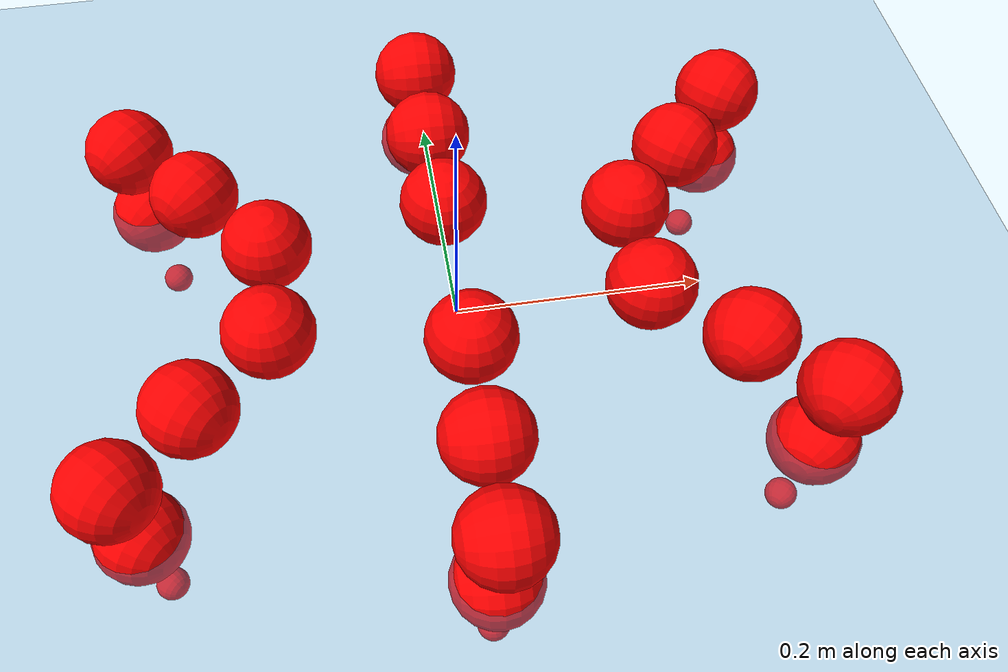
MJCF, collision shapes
<mujoco model="Golem">
  <compiler angle="radian" assetdir="assets" balanceinertia="true" inertiafromgeom="false"/>

  <option timestep="0.005" density="1.2" viscosity="2e-05"/>

  <size nkey="1"/>

  <visual>
    <quality shadowsize="8192"/>
    <map shadowclip="0.5"/>
  </visual>

  <default>
    <default class="/">
      <joint armature="0.01" damping="0.01" frictionloss="0.01"/>
      <geom contype="0" conaffinity="0" group="1" solref="-1000 -80"/>
      <site size="0.01 0.005 0.005" group="5"/>
      <general forcelimited="true" biastype="affine" gainprm="25" biasprm="0 -25 -0.5"/>
      <default class="visual">
        <geom type="mesh" group="2"/>
      </default>
      <default class="collision">
        <geom group="3"/>
      </default>
      <default class="foot">
        <geom size="0.01 0 0" condim="6" group="4" priority="1" solimp="0.015 1 0.01"/>
      </default>
      <default class="reward_collision_sphere">
        <geom group="5" rgba="1 0 0 1"/>
      </default>
    </default>
  </default>

  <asset>
    <texture type="skybox" colorspace="auto" name="//unnamed_texture_0" builtin="gradient" rgb1="0.95 0.95 0.95" rgb2="0.95 0.95 0.95" width="100" height="600"/>
    <texture type="2d" colorspace="auto" name="texplane" builtin="checker" rgb1="0.345 0.575 0.748" rgb2="0.345 0.575 0.748" markrgb="1 1 1" width="512" height="512"/>
    <material name="MatPlane" class="/" texture="texplane" texuniform="true" texrepeat="2 2" specular="0.9"/>
    <mesh name="body" class="/" file="body.stl" scale="0.001 0.001 0.001"/>
    <mesh name="coxa" class="/" file="coxa.stl" scale="0.001 0.001 0.001"/>
    <mesh name="femur" class="/" file="femur.stl" scale="0.001 0.001 0.001"/>
    <mesh name="tibia" class="/" file="tibia.stl" scale="0.001 0.001 0.001"/>
    <mesh name="tarsus" class="/" file="tarsus.stl" scale="0.001 0.001 0.001"/>
  </asset>

  <worldbody>
    <geom name="floor" class="/" size="100 100 0.125" type="plane" group="0" material="MatPlane"/>
    <light name="toplight_shadow" class="/" pos="0 0 5" dir="0.0990148 0.0990148 -0.990148" type="directional" ambient="0.04 0.04 0.04" diffuse="0.55 0.55 0.55" specular="0.12 0.12 0.12"/>
    <light name="toplight_fill" class="/" pos="0 0 5" dir="0.0990148 0.0990148 -0.990148" type="directional" castshadow="false" ambient="0.04 0.04 0.04" diffuse="0.3 0.3 0.3" specular="0.08 0.08 0.08"/>
    <body name="trunk" pos="-0.000109662 -0.000117829 -0.00176784" quat="1 -0.000251081 -7.6792e-06 0.000287579">
      <inertial pos="-0.000132042 0.000471662 -0.0048386" quat="0.999989 -0.00113466 -0.00278938 0.00360261" mass="2.4746" diaginertia="0.00605927 0.00165227 0.0104068"/>
      <joint name="//unnamed_joint_0" type="free"/>
      <geom name="//unnamed_geom_1" class="/" pos="0 0 0.0644126" quat="1 0 0 0" type="mesh" rgba="0.9 0.9 0.9 1" mesh="body"/>
      <site name="imu" class="/" pos="0.121396 7.11472e-05 0.106837" size="0.00867408"/>
      <camera name="track" class="/" pos="0 -1.38901 0" quat="0.707107 0.707107 0 0" mode="trackcom"/>
      <camera name="ego_camera" class="/" pos="0.117165 0 0.100645" quat="-0.5 -0.5 0.5 0.5"/>
      <body name="coxa_RR" pos="-0.161758 -0.0590945 0.0658676" quat="0.381831 0.00061659 0.000209761 -0.924232">
        <inertial pos="-0.0021237 0.000137956 0.00116028" quat="0.999979 -0.00346579 -0.00364748 0.00419896" mass="0.129118" diaginertia="0.0059768 0.00162763 0.0100606"/>
        <joint name="coxa_joint_RR" class="/" pos="0 0 0" axis="-1.09223e-05 -1.25131e-06 -1" range="-3.12337 3.13597" armature="0.00904241" damping="0.00977533" frictionloss="0.00925029"/>
        <geom name="//unnamed_geom_2" class="/" type="mesh" rgba="0.2 0.2 0.2 1" mesh="coxa"/>
        <geom name="//unnamed_geom_3" class="reward_collision_sphere" size="0.0346963" pos="-0.0270382 0 0"/>
        <body name="femur_RR" pos="0.0525901 -0.000530766 0.000657563" quat="0.499834 -0.500055 0.500039 0.500072">
          <inertial pos="-0.000640874 0.000730154 0.00166749" quat="1 -4.42413e-05 -0.000162007 -0.000432336" mass="0.1312" diaginertia="0.00597468 0.00162114 0.0101138"/>
          <joint name="femur_joint_RR" class="/" pos="0 0 0" axis="-0.00482646 0.00228223 -0.999986" stiffness="0.00148968" range="-3.15754 3.14321" armature="0.00896897" damping="0.00472751" frictionloss="0.00909385"/>
          <geom name="//unnamed_geom_4" class="/" type="mesh" rgba="0.9 0.9 0.9 1" mesh="femur"/>
          <geom name="//unnamed_geom_5" class="reward_collision_sphere" size="0.0346963"/>
          <body name="tibia_RR" pos="-0.000421366 -0.0749282 0.000830242" quat="-1.55671e-05 1 -2.31162e-05 -3.14612e-07">
            <inertial pos="0.000743036 0.00163611 -0.00175734" quat="0.999976 0.00369283 0.00486487 -0.00339534" mass="0.13071" diaginertia="0.00590627 0.0016263 0.0103815"/>
            <joint name="tibia_joint_RR" class="/" pos="0 0 0" axis="0.00101047 -0.000622486 0.999999" range="-3.14001 3.12988" armature="0.00871469" damping="0" frictionloss="0.00882323"/>
            <geom name="//unnamed_geom_6" class="/" type="mesh" rgba="0.2 0.2 0.2 1" mesh="tibia"/>
            <geom name="//unnamed_geom_7" class="reward_collision_sphere" size="0.0346963"/>
            <body name="tarsus_RR" pos="0.0775454 -0.00179685 -0.0014617" quat="1 -0.000308277 0.000567208 0.000534803">
              <inertial pos="0.052246 -0.00157096 -0.000858118" quat="0.498557 0.500082 0.500972 0.500387" mass="0.127229" diaginertia="0.00596906 0.00163028 0.0102829"/>
              <joint name="tarsus_joint_RR" class="/" pos="0 0 0" axis="-0.000488367 0.00101876 0.999999" range="-3.14101 3.12792" armature="0.00863414" damping="0" frictionloss="0.00865802"/>
              <geom name="//unnamed_geom_8" class="/" type="mesh" rgba="0.9 0.9 0.9 1" mesh="tarsus"/>
              <geom name="foot_1" class="foot" size="0.00850215" pos="0.100943 0 0" quat="0 -0.707107 0 0.707107"/>
              <geom name="//unnamed_geom_10" class="reward_collision_sphere" size="0.0346963"/>
              <geom name="//unnamed_geom_11" class="reward_collision_sphere" size="0.0130111" pos="0.0968868 0 0"/>
              <site name="foot_1" class="foot" pos="0.100943 0 0" quat="0 -0.707107 0 0.707107" size="0.00867408"/>
            </body>
          </body>
        </body>
      </body>
      <body name="coxa_RM" pos="0.00116636 -0.0927252 0.0646632" quat="0.70724 -0.000107712 0.000283793 -0.706973">
        <inertial pos="0.000279591 0.00020389 -0.00191581" quat="0.999989 0.00120966 0.0038863 0.00211396" mass="0.129954" diaginertia="0.00585028 0.00157484 0.0101212"/>
        <joint name="coxa_joint_RM" class="/" pos="0 0 0" axis="-0.000481429 0.000515348 -1" range="-3.14197 3.13602" armature="0.00897158" damping="0.0116167" frictionloss="0.00864744"/>
        <geom name="//unnamed_geom_12" class="/" type="mesh" rgba="0.2 0.2 0.2 1" mesh="coxa"/>
        <geom name="//unnamed_geom_13" class="reward_collision_sphere" size="0.0346963" pos="-0.0270382 0 0"/>
        <body name="femur_RM" pos="0.0526948 -0.00206983 -0.00126971" quat="0.500274 -0.500123 0.499113 0.500489">
          <inertial pos="0.00040314 -0.000208918 -6.02436e-05" quat="0.999955 -0.00480982 -0.00139723 -0.00808998" mass="0.129308" diaginertia="0.00606912 0.00163573 0.0103096"/>
          <joint name="femur_joint_RM" class="/" pos="0 0 0" axis="0.00449937 -0.00223386 -0.999987" range="-3.16281 3.16277" armature="0.00955259" damping="0.0190252" frictionloss="0.00857282"/>
          <geom name="//unnamed_geom_14" class="/" type="mesh" rgba="0.9 0.9 0.9 1" mesh="femur"/>
          <geom name="//unnamed_geom_15" class="reward_collision_sphere" size="0.0346963"/>
          <body name="tibia_RM" pos="-0.00188902 -0.0733692 -0.000804654" quat="9.79542e-06 1 -4.50201e-05 3.19423e-05">
            <inertial pos="0.00104186 0.000208834 -0.00147101" quat="0.999987 0.00192345 -0.00462426 0.00121029" mass="0.126011" diaginertia="0.00578581 0.00159153 0.0103785"/>
            <joint name="tibia_joint_RM" class="/" pos="0 0 0" axis="0.00217919 0.00155457 0.999996" range="-3.16039 3.11506" armature="0.00821229" damping="0" frictionloss="0.00911199"/>
            <geom name="//unnamed_geom_16" class="/" type="mesh" rgba="0.2 0.2 0.2 1" mesh="tibia"/>
            <geom name="//unnamed_geom_17" class="reward_collision_sphere" size="0.0346963"/>
            <body name="tarsus_RM" pos="0.0795592 -0.000972194 0.00269197" quat="1 -0.000356612 5.00374e-06 0.000225022">
              <inertial pos="0.0550758 5.77161e-05 0.00119909" quat="0.499628 0.498092 0.502183 0.500088" mass="0.130273" diaginertia="0.00596886 0.0016134 0.0103766"/>
              <joint name="tarsus_joint_RM" class="/" pos="0 0 0" axis="0.000153285 -0.000325823 1" range="-3.12892 3.18477" armature="0.00871693" damping="0" frictionloss="0.00876596"/>
              <geom name="//unnamed_geom_18" class="/" type="mesh" rgba="0.9 0.9 0.9 1" mesh="tarsus"/>
              <geom name="foot_2" class="foot" size="0.00820996" pos="0.100943 0 0" quat="0 -0.707107 0 0.707107"/>
              <geom name="//unnamed_geom_20" class="reward_collision_sphere" size="0.0346963"/>
              <geom name="//unnamed_geom_21" class="reward_collision_sphere" size="0.0130111" pos="0.0968868 0 0"/>
              <site name="foot_2" class="foot" pos="0.100943 0 0" quat="0 -0.707107 0 0.707107" size="0.00867408"/>
            </body>
          </body>
        </body>
      </body>
      <body name="coxa_RF" pos="0.160454 -0.0581602 0.0640111" quat="0.924053 0.000400541 -0.00066771 -0.382264">
        <inertial pos="0.00178135 -0.00145495 0.000532131" quat="0.999996 0.00214099 0.0016595 9.86846e-05" mass="0.130429" diaginertia="0.00605226 0.00160644 0.0103934"/>
        <joint name="coxa_joint_RF" class="/" pos="0 0 0" axis="-0.00326501 0.00107695 -0.999994" stiffness="0.000594592" range="-3.14141 3.13863" armature="0.00877854" damping="0" frictionloss="0.00910073"/>
        <geom name="//unnamed_geom_22" class="/" type="mesh" rgba="0.2 0.2 0.2 1" mesh="coxa"/>
        <geom name="//unnamed_geom_23" class="reward_collision_sphere" size="0.0346963" pos="-0.0270382 0 0"/>
        <body name="femur_RF" pos="0.0538119 0.00209715 0.0016076" quat="0.500193 -0.500761 0.499998 0.499047">
          <inertial pos="0.000395859 -0.000654073 0.000982167" quat="0.999998 0.00163971 -0.00044089 0.000403433" mass="0.131731" diaginertia="0.00600485 0.00163959 0.0103685"/>
          <joint name="femur_joint_RF" class="/" pos="0 0 0" axis="0.000582767 -0.00479379 -0.999988" range="-3.15297 3.12929" armature="0.00855803" damping="0.0119964" frictionloss="0.0086433"/>
          <geom name="//unnamed_geom_24" class="/" type="mesh" rgba="0.9 0.9 0.9 1" mesh="femur"/>
          <geom name="//unnamed_geom_25" class="reward_collision_sphere" size="0.0346963"/>
          <body name="tibia_RF" pos="0.000517619 -0.0746012 0.000468051" quat="1.82969e-05 1 -0.000131403 -0.000163641">
            <inertial pos="-0.000780693 -0.000769909 -0.000241254" quat="0.999989 0.000617756 0.000759425 -0.00458919" mass="0.125486" diaginertia="0.00577255 0.00156722 0.0102535"/>
            <joint name="tibia_joint_RF" class="/" pos="0 0 0" axis="-0.00189573 0.00038277 0.999998" range="-3.12959 3.11465" armature="0.00867859" damping="0" frictionloss="0.00864161"/>
            <geom name="//unnamed_geom_26" class="/" type="mesh" rgba="0.2 0.2 0.2 1" mesh="tibia"/>
            <geom name="//unnamed_geom_27" class="reward_collision_sphere" size="0.0346963"/>
            <body name="tarsus_RF" pos="0.0784129 -0.00209476 0.00100012" quat="1 1.22664e-05 3.98772e-05 -0.000108936">
              <inertial pos="0.0536281 0.000564672 -0.000661914" quat="0.50034 0.499677 0.499731 0.500251" mass="0.131614" diaginertia="0.00590855 0.00165696 0.0104039"/>
              <joint name="tarsus_joint_RF" class="/" pos="0 0 0" axis="0.000103819 0.000761214 1" range="-3.13639 3.14758" armature="0.00851724" damping="0" frictionloss="0.00856469"/>
              <geom name="//unnamed_geom_28" class="/" type="mesh" rgba="0.9 0.9 0.9 1" mesh="tarsus"/>
              <geom name="foot_3" class="foot" size="0.00862088" pos="0.100943 0 0" quat="0 -0.707107 0 0.707107"/>
              <geom name="//unnamed_geom_30" class="reward_collision_sphere" size="0.0346963"/>
              <geom name="//unnamed_geom_31" class="reward_collision_sphere" size="0.0130111" pos="0.0968868 0 0"/>
              <site name="foot_3" class="foot" pos="0.100943 0 0" quat="0 -0.707107 0 0.707107" size="0.00867408"/>
            </body>
          </body>
        </body>
      </body>
      <body name="coxa_LR" pos="-0.15961 0.0606388 0.0636104" quat="0.382766 0.000388896 -0.000200917 0.923845">
        <inertial pos="-0.000132097 0.000851767 -0.000293789" quat="0.999998 0.00083612 -0.00173393 -0.000454312" mass="0.128648" diaginertia="0.0057929 0.00159125 0.0100172"/>
        <joint name="coxa_joint_LR" class="/" pos="0 0 0" axis="0.000193648 0.000242087 -1" range="-3.13461 3.13645" armature="0.00828176" damping="0.0122611" frictionloss="0.00900379"/>
        <geom name="//unnamed_geom_32" class="/" type="mesh" rgba="0.2 0.2 0.2 1" mesh="coxa"/>
        <geom name="//unnamed_geom_33" class="reward_collision_sphere" size="0.0346963" pos="-0.0270382 0 0"/>
        <body name="femur_LR" pos="0.0535117 -0.00345678 -0.00033001" quat="0.500104 -0.500038 0.499965 0.499893">
          <inertial pos="-0.000773279 0.000709962 -0.00224359" quat="0.999995 0.00113918 -0.00184334 -0.00211857" mass="0.127029" diaginertia="0.0058229 0.00158437 0.0101545"/>
          <joint name="femur_joint_LR" class="/" pos="0 0 0" axis="-0.00158892 0.0104747 0.999944" stiffness="0.000608098" range="-3.13824 3.14076" armature="0.00862553" damping="0.00610676" frictionloss="0.00853983"/>
          <geom name="//unnamed_geom_34" class="/" type="mesh" rgba="0.9 0.9 0.9 1" mesh="femur"/>
          <geom name="//unnamed_geom_35" class="reward_collision_sphere" size="0.0346963"/>
          <body name="tibia_LR" pos="3.5034e-05 -0.0751999 -0.00152848" quat="0.000200211 1 0.000136017 -5.72351e-05">
            <inertial pos="-0.000715956 0.00157863 -0.000497695" quat="0.999996 0.000835277 0.00247969 0.00058457" mass="0.129765" diaginertia="0.00579691 0.00161572 0.010444"/>
            <joint name="tibia_joint_LR" class="/" pos="0 0 0" axis="-0.00992418 0.00313959 -0.999946" range="-3.11964 3.09241" armature="0.00967036" damping="0" frictionloss="0.00876939"/>
            <geom name="//unnamed_geom_36" class="/" type="mesh" rgba="0.2 0.2 0.2 1" mesh="tibia"/>
            <geom name="//unnamed_geom_37" class="reward_collision_sphere" size="0.0346963"/>
            <body name="tarsus_LR" pos="0.0799474 0.00107013 0.0021196" quat="1 -0.000371011 -9.7963e-06 0.000125108">
              <inertial pos="0.0565267 0.000120716 -0.00218991" quat="0.499989 0.499966 0.500093 0.499952" mass="0.131443" diaginertia="0.00596827 0.00162168 0.010345"/>
              <joint name="tarsus_joint_LR" class="/" pos="0 0 0" axis="-0.00153968 0.000237984 -0.999999" range="-3.14319 3.14803" armature="0.00843498" damping="0.00649257" frictionloss="0.00872615"/>
              <geom name="//unnamed_geom_38" class="/" type="mesh" rgba="0.9 0.9 0.9 1" mesh="tarsus"/>
              <geom name="foot_4" class="foot" size="0.00852457" pos="0.100943 0 0" quat="0.707107 0 -0.707107 0"/>
              <geom name="//unnamed_geom_40" class="reward_collision_sphere" size="0.0346963"/>
              <geom name="//unnamed_geom_41" class="reward_collision_sphere" size="0.0130111" pos="0.0968868 0 0"/>
              <site name="foot_4" class="foot" pos="0.100943 0 0" quat="0.707107 0 -0.707107 0" size="0.00867408"/>
            </body>
          </body>
        </body>
      </body>
      <body name="coxa_LM" pos="-0.000735204 0.0899524 0.0645972" quat="0.707053 0.000132308 0.000229559 0.70716">
        <inertial pos="0.000313922 -0.00168282 0.00247474" quat="0.999993 0.00363104 -0.000766323 6.93613e-05" mass="0.130978" diaginertia="0.00605874 0.00162686 0.010422"/>
        <joint name="coxa_joint_LM" class="/" pos="0 0 0" axis="-0.000564241 0.0057688 -0.999983" range="-3.14692 3.15858" armature="0.00780061" damping="0.00608021" frictionloss="0.00866661"/>
        <geom name="//unnamed_geom_42" class="/" type="mesh" rgba="0.2 0.2 0.2 1" mesh="coxa"/>
        <geom name="//unnamed_geom_43" class="reward_collision_sphere" size="0.0346963" pos="-0.0270382 0 0"/>
        <body name="femur_LM" pos="0.0491942 0.00217963 -0.00158349" quat="0.499954 -0.50006 0.500031 0.499955">
          <inertial pos="-0.00213175 -0.000402068 -7.328e-05" quat="0.999998 -0.000225503 -0.00193805 0.000742077" mass="0.126124" diaginertia="0.00588269 0.00157108 0.0100091"/>
          <joint name="femur_joint_LM" class="/" pos="0 0 0" axis="0.00104304 0.010274 0.999947" range="-3.14242 3.13943" armature="0.00870493" damping="0.00800321" frictionloss="0.00904692"/>
          <geom name="//unnamed_geom_44" class="/" type="mesh" rgba="0.9 0.9 0.9 1" mesh="femur"/>
          <geom name="//unnamed_geom_45" class="reward_collision_sphere" size="0.0346963"/>
          <body name="tibia_LM" pos="-0.000552833 -0.0727245 0.000943705" quat="-0.00027463 1 0.000356486 -5.34073e-05">
            <inertial pos="-0.000612888 0.000316611 0.000607391" quat="0.999991 -0.00169183 0.00291106 0.00273523" mass="0.126672" diaginertia="0.00588119 0.00160297 0.0101215"/>
            <joint name="tibia_joint_LM" class="/" pos="0 0 0" axis="0.00163355 -0.00285541 -0.999995" range="-3.13089 3.16881" armature="0.00844374" damping="0.00583934" frictionloss="0.00829078"/>
            <geom name="//unnamed_geom_46" class="/" type="mesh" rgba="0.2 0.2 0.2 1" mesh="tibia"/>
            <geom name="//unnamed_geom_47" class="reward_collision_sphere" size="0.0346963"/>
            <body name="tarsus_LM" pos="0.0798638 -0.00109009 0.000346303" quat="1 -2.6095e-05 3.38514e-05 -4.16161e-05">
              <inertial pos="0.0560302 0.000809816 0.000978936" quat="0.500104 0.499759 0.500183 0.499954" mass="0.12996" diaginertia="0.00602101 0.00163291 0.0103323"/>
              <joint name="tarsus_joint_LM" class="/" pos="0 0 0" axis="0.000839159 0.000658824 -0.999999" range="-3.14721 3.13746" armature="0.00853535" damping="0" frictionloss="0.00902464"/>
              <geom name="//unnamed_geom_48" class="/" type="mesh" rgba="0.9 0.9 0.9 1" mesh="tarsus"/>
              <geom name="foot_5" class="foot" size="0.00878641" pos="0.100943 0 0" quat="0.707107 0 -0.707107 0"/>
              <geom name="//unnamed_geom_50" class="reward_collision_sphere" size="0.0346963"/>
              <geom name="//unnamed_geom_51" class="reward_collision_sphere" size="0.0130111" pos="0.0968868 0 0"/>
              <site name="foot_5" class="foot" pos="0.100943 0 0" quat="0.707107 0 -0.707107 0" size="0.00867408"/>
            </body>
          </body>
        </body>
      </body>
      <body name="coxa_LF" pos="0.159681 0.0586389 0.0640469" quat="0.923982 0.000128762 6.23593e-05 0.382437">
        <inertial pos="0.000998238 -0.000499807 -0.000848158" quat="0.999959 -0.00792358 -0.00430395 0.000485744" mass="0.130893" diaginertia="0.00611953 0.00160329 0.0103264"/>
        <joint name="coxa_joint_LF" class="/" pos="0 0 0" axis="-0.00305678 -0.00132092 -0.999994" range="-3.1346 3.1086" armature="0.00890227" damping="0.00960696" frictionloss="0.00844637"/>
        <geom name="//unnamed_geom_52" class="/" type="mesh" rgba="0.2 0.2 0.2 1" mesh="coxa"/>
        <geom name="//unnamed_geom_53" class="reward_collision_sphere" size="0.0346963" pos="-0.0270382 0 0"/>
        <body name="femur_LF" pos="0.0520864 0.000688915 -0.00126292" quat="0.500319 -0.500016 0.49964 0.500024">
          <inertial pos="-0.00117908 0.000203335 0.000249871" quat="0.999988 -0.00279122 0.00108531 0.00380356" mass="0.13211" diaginertia="0.00586519 0.00162627 0.0103255"/>
          <joint name="femur_joint_LF" class="/" pos="0 0 0" axis="0.000616461 0.00999234 0.99995" range="-3.17124 3.14765" armature="0.00860036" damping="0" frictionloss="0.00870332"/>
          <geom name="//unnamed_geom_54" class="/" type="mesh" rgba="0.9 0.9 0.9 1" mesh="femur"/>
          <geom name="//unnamed_geom_55" class="reward_collision_sphere" size="0.0346963"/>
          <body name="tibia_LF" pos="-0.000704347 -0.0763706 0.00239389" quat="0.000117363 1 -0.00016238 -0.000150201">
            <inertial pos="-0.00111264 2.15312e-05 -0.000278337" quat="0.999934 -0.00448355 0.00319146 -0.0100955" mass="0.133846" diaginertia="0.00593862 0.0016257 0.0104622"/>
            <joint name="tibia_joint_LF" class="/" pos="0 0 0" axis="0.000936293 0.00176327 -0.999998" range="-3.13995 3.12122" armature="0.00869306" damping="0.00210039" frictionloss="0.00867958"/>
            <geom name="//unnamed_geom_56" class="/" type="mesh" rgba="0.2 0.2 0.2 1" mesh="tibia"/>
            <geom name="//unnamed_geom_57" class="reward_collision_sphere" size="0.0346963"/>
            <body name="tarsus_LF" pos="0.0798243 -0.00116768 -0.000497368" quat="1 0.000123645 -4.25825e-05 0.000107313">
              <inertial pos="0.0546538 0.00133527 -0.000874007" quat="0.501316 0.497605 0.501546 0.499523" mass="0.125065" diaginertia="0.00582072 0.00157624 0.0100146"/>
              <joint name="tarsus_joint_LF" class="/" pos="0 0 0" axis="0.00198744 -0.00227542 -0.999995" range="-3.12399 3.12608" armature="0.00897074" damping="0.016812" frictionloss="0.00867439"/>
              <geom name="//unnamed_geom_58" class="/" type="mesh" rgba="0.9 0.9 0.9 1" mesh="tarsus"/>
              <geom name="foot_6" class="foot" size="0.00874816" pos="0.100943 0 0" quat="0.707107 0 -0.707107 0"/>
              <geom name="//unnamed_geom_60" class="reward_collision_sphere" size="0.0346963"/>
              <geom name="//unnamed_geom_61" class="reward_collision_sphere" size="0.0130111" pos="0.0968868 0 0"/>
              <site name="foot_6" class="foot" pos="0.100943 0 0" quat="0.707107 0 -0.707107 0" size="0.00867408"/>
            </body>
          </body>
        </body>
      </body>
    </body>
  </worldbody>

  <contact>
    <pair class="/" geom1="floor" geom2="foot_1" name="//unnamed_contact_0"/>
    <pair class="/" geom1="floor" geom2="foot_2" name="//unnamed_contact_1"/>
    <pair class="/" geom1="floor" geom2="foot_3" name="//unnamed_contact_2"/>
    <pair class="/" geom1="floor" geom2="foot_4" name="//unnamed_contact_3"/>
    <pair class="/" geom1="floor" geom2="foot_5" name="//unnamed_contact_4"/>
    <pair class="/" geom1="floor" geom2="foot_6" name="//unnamed_contact_5"/>
  </contact>

  <actuator>
    <general name="coxa_joint_RR" class="/" joint="coxa_joint_RR" forcerange="-6.2159 6.2159" gainprm="21.1904" biasprm="0 -21.1904 -0.454294"/>
    <general name="femur_joint_RR" class="/" joint="femur_joint_RR" forcerange="-6.31931 6.31931" gainprm="21.1904" biasprm="0 -21.1904 -0.454294"/>
    <general name="tibia_joint_RR" class="/" joint="tibia_joint_RR" forcerange="-6.01223 6.01223" gainprm="21.1904" biasprm="0 -21.1904 -0.454294"/>
    <general name="tarsus_joint_RR" class="/" joint="tarsus_joint_RR" forcerange="-6.0974 6.0974" gainprm="21.1904" biasprm="0 -21.1904 -0.454294"/>
    <general name="coxa_joint_RM" class="/" joint="coxa_joint_RM" forcerange="-6.88229 6.88229" gainprm="21.1904" biasprm="0 -21.1904 -0.454294"/>
    <general name="femur_joint_RM" class="/" joint="femur_joint_RM" forcerange="-6.24276 6.24276" gainprm="21.1904" biasprm="0 -21.1904 -0.454294"/>
    <general name="tibia_joint_RM" class="/" joint="tibia_joint_RM" forcerange="-6.10483 6.10483" gainprm="21.1904" biasprm="0 -21.1904 -0.454294"/>
    <general name="tarsus_joint_RM" class="/" joint="tarsus_joint_RM" forcerange="-6.00592 6.00592" gainprm="21.1904" biasprm="0 -21.1904 -0.454294"/>
    <general name="coxa_joint_RF" class="/" joint="coxa_joint_RF" forcerange="-6.58099 6.58099" gainprm="21.1904" biasprm="0 -21.1904 -0.454294"/>
    <general name="femur_joint_RF" class="/" joint="femur_joint_RF" forcerange="-6.34138 6.34138" gainprm="21.1904" biasprm="0 -21.1904 -0.454294"/>
    <general name="tibia_joint_RF" class="/" joint="tibia_joint_RF" forcerange="-6.39091 6.39091" gainprm="21.1904" biasprm="0 -21.1904 -0.454294"/>
    <general name="tarsus_joint_RF" class="/" joint="tarsus_joint_RF" forcerange="-6.35014 6.35014" gainprm="21.1904" biasprm="0 -21.1904 -0.454294"/>
    <general name="coxa_joint_LR" class="/" joint="coxa_joint_LR" forcerange="-6.75061 6.75061" gainprm="21.1904" biasprm="0 -21.1904 -0.454294"/>
    <general name="femur_joint_LR" class="/" joint="femur_joint_LR" forcerange="-6.32606 6.32606" gainprm="21.1904" biasprm="0 -21.1904 -0.454294"/>
    <general name="tibia_joint_LR" class="/" joint="tibia_joint_LR" forcerange="-6.46919 6.46919" gainprm="21.1904" biasprm="0 -21.1904 -0.454294"/>
    <general name="tarsus_joint_LR" class="/" joint="tarsus_joint_LR" forcerange="-6.79828 6.79828" gainprm="21.1904" biasprm="0 -21.1904 -0.454294"/>
    <general name="coxa_joint_LM" class="/" joint="coxa_joint_LM" forcerange="-6.03592 6.03592" gainprm="21.1904" biasprm="0 -21.1904 -0.454294"/>
    <general name="femur_joint_LM" class="/" joint="femur_joint_LM" forcerange="-6.10439 6.10439" gainprm="21.1904" biasprm="0 -21.1904 -0.454294"/>
    <general name="tibia_joint_LM" class="/" joint="tibia_joint_LM" forcerange="-6.71516 6.71516" gainprm="21.1904" biasprm="0 -21.1904 -0.454294"/>
    <general name="tarsus_joint_LM" class="/" joint="tarsus_joint_LM" forcerange="-6.86843 6.86843" gainprm="21.1904" biasprm="0 -21.1904 -0.454294"/>
    <general name="coxa_joint_LF" class="/" joint="coxa_joint_LF" forcerange="-6.22213 6.22213" gainprm="21.1904" biasprm="0 -21.1904 -0.454294"/>
    <general name="femur_joint_LF" class="/" joint="femur_joint_LF" forcerange="-6.25558 6.25558" gainprm="21.1904" biasprm="0 -21.1904 -0.454294"/>
    <general name="tibia_joint_LF" class="/" joint="tibia_joint_LF" forcerange="-6.56656 6.56656" gainprm="21.1904" biasprm="0 -21.1904 -0.454294"/>
    <general name="tarsus_joint_LF" class="/" joint="tarsus_joint_LF" forcerange="-6.5174 6.5174" gainprm="21.1904" biasprm="0 -21.1904 -0.454294"/>
  </actuator>

  <sensor>
    <gyro site="imu" name="imu_angular_velocity"/>
    <velocimeter site="imu" name="imu_linear_velocity"/>
    <framelinvel objtype="site" objname="foot_1" name="foot_1_global_linear_velocity"/>
    <framelinvel objtype="site" objname="foot_2" name="foot_2_global_linear_velocity"/>
    <framelinvel objtype="site" objname="foot_3" name="foot_3_global_linear_velocity"/>
    <framelinvel objtype="site" objname="foot_4" name="foot_4_global_linear_velocity"/>
    <framelinvel objtype="site" objname="foot_5" name="foot_5_global_linear_velocity"/>
    <framelinvel objtype="site" objname="foot_6" name="foot_6_global_linear_velocity"/>
  </sensor>

  <keyframe>
    <key name="home" qpos="0 0 0.1457 1 0 0 0 0 0 0 0 0 0 0 0 0 0 0 0 0 0 0 0 0 0 0 0 0 0 0 0"/>
  </keyframe>
</mujoco>
